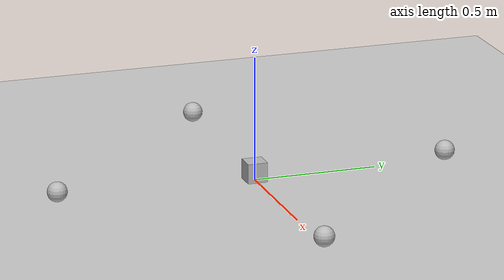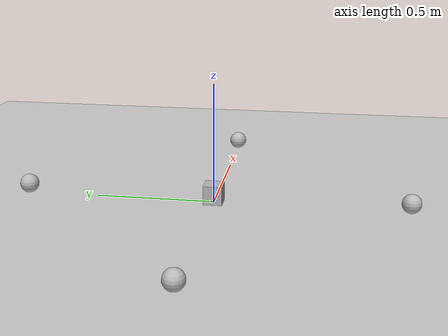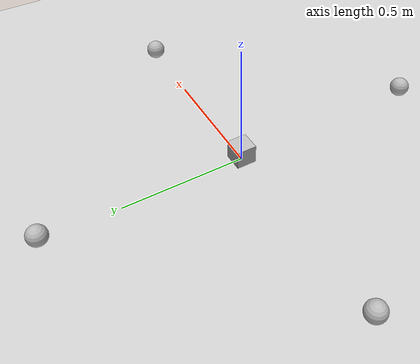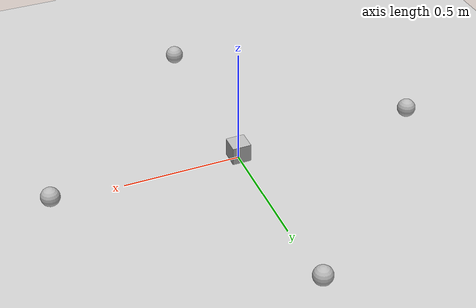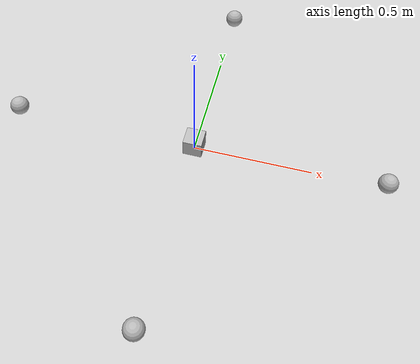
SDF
<?xml version="1.0"?>
<sdf version="1.6">
  <world name="default">

    <include>
      <uri>model://ground_plane</uri>
    </include>

    <include>
      <uri>model://sun</uri>
    </include>

    <model name='box'>
      <pose>0 0 0.04 0 0 0</pose>
      <link name="link">
        <collision name="collision">
          <geometry>
            <box>
              <size>0.08 0.08 0.08</size>
            </box>
          </geometry>
        </collision>
        <visual name="visual">
          <geometry>
            <box>
              <size>0.08 0.08 0.08</size>
            </box>
          </geometry>
        </visual>
      </link>

      <plugin name='vacuum_gripper' filename='libgazebo_ros_vacuum_gripper.so'>

        <ros>
          <namespace>/demo</namespace>
          <remapping>switch:=switch_demo</remapping>
          <remapping>grasping:=grasping_demo</remapping>
        </ros>

        <link_name>link</link_name>

        <max_distance>5.0</max_distance>

        <fixed>ground_plane</fixed>

      </plugin>
    </model>

    <model name='ball1'>
      <pose>0 -0.8 0.04 0 0 0</pose>
      <link name="link1">
        <inertial>
          <mass>0.026</mass>
          <inertia>
            <ixx>1.664e-5</ixx>
            <iyy>1.664e-5</iyy>
            <izz>1.664e-5</izz>
            <ixy>0</ixy>
            <ixz>0</ixz>
            <iyz>0</iyz>
          </inertia>
        </inertial>
        <collision name="collision">
          <geometry>
            <sphere>
              <radius>0.04</radius>
            </sphere>
          </geometry>
        </collision>
        <visual name="visual">
          <geometry>
            <sphere>
              <radius>0.04</radius>
            </sphere>
          </geometry>
        </visual>
      </link>
    </model>

    <model name='ball2'>
      <pose>0.8 0 0.04 0 0 0</pose>
      <link name="link2">
        <inertial>
          <mass>0.026</mass>
          <inertia>
            <ixx>1.664e-5</ixx>
            <iyy>1.664e-5</iyy>
            <izz>1.664e-5</izz>
            <ixy>0</ixy>
            <ixz>0</ixz>
            <iyz>0</iyz>
          </inertia>
        </inertial>
        <collision name="collision">
          <geometry>
            <sphere>
              <radius>0.04</radius>
            </sphere>
          </geometry>
        </collision>
        <visual name="visual">
          <geometry>
            <sphere>
              <radius>0.04</radius>
            </sphere>
          </geometry>
        </visual>
      </link>
    </model>

    <model name='ball3'>
      <pose>-0.8 0 0.04 0 0 0</pose>
      <link name="link3">
        <inertial>
          <mass>0.026</mass>
          <inertia>
            <ixx>1.664e-5</ixx>
            <iyy>1.664e-5</iyy>
            <izz>1.664e-5</izz>
            <ixy>0</ixy>
            <ixz>0</ixz>
            <iyz>0</iyz>
          </inertia>
        </inertial>
        <collision name="collision">
          <geometry>
            <sphere>
              <radius>0.04</radius>
            </sphere>
          </geometry>
        </collision>
        <visual name="visual">
          <geometry>
            <sphere>
              <radius>0.04</radius>
            </sphere>
          </geometry>
        </visual>
      </link>
    </model>

    <model name='ball4'>
      <pose>0 0.8 0.04 0 0 0</pose>
      <link name="link4">
        <inertial>
          <mass>0.026</mass>
          <inertia>
            <ixx>1.664e-5</ixx>
            <iyy>1.664e-5</iyy>
            <izz>1.664e-5</izz>
            <ixy>0</ixy>
            <ixz>0</ixz>
            <iyz>0</iyz>
          </inertia>
        </inertial>
        <collision name="collision">
          <geometry>
            <sphere>
              <radius>0.04</radius>
            </sphere>
          </geometry>
        </collision>
        <visual name="visual">
          <geometry>
            <sphere>
              <radius>0.04</radius>
            </sphere>
          </geometry>
        </visual>
      </link>
    </model>

  </world>
</sdf>
